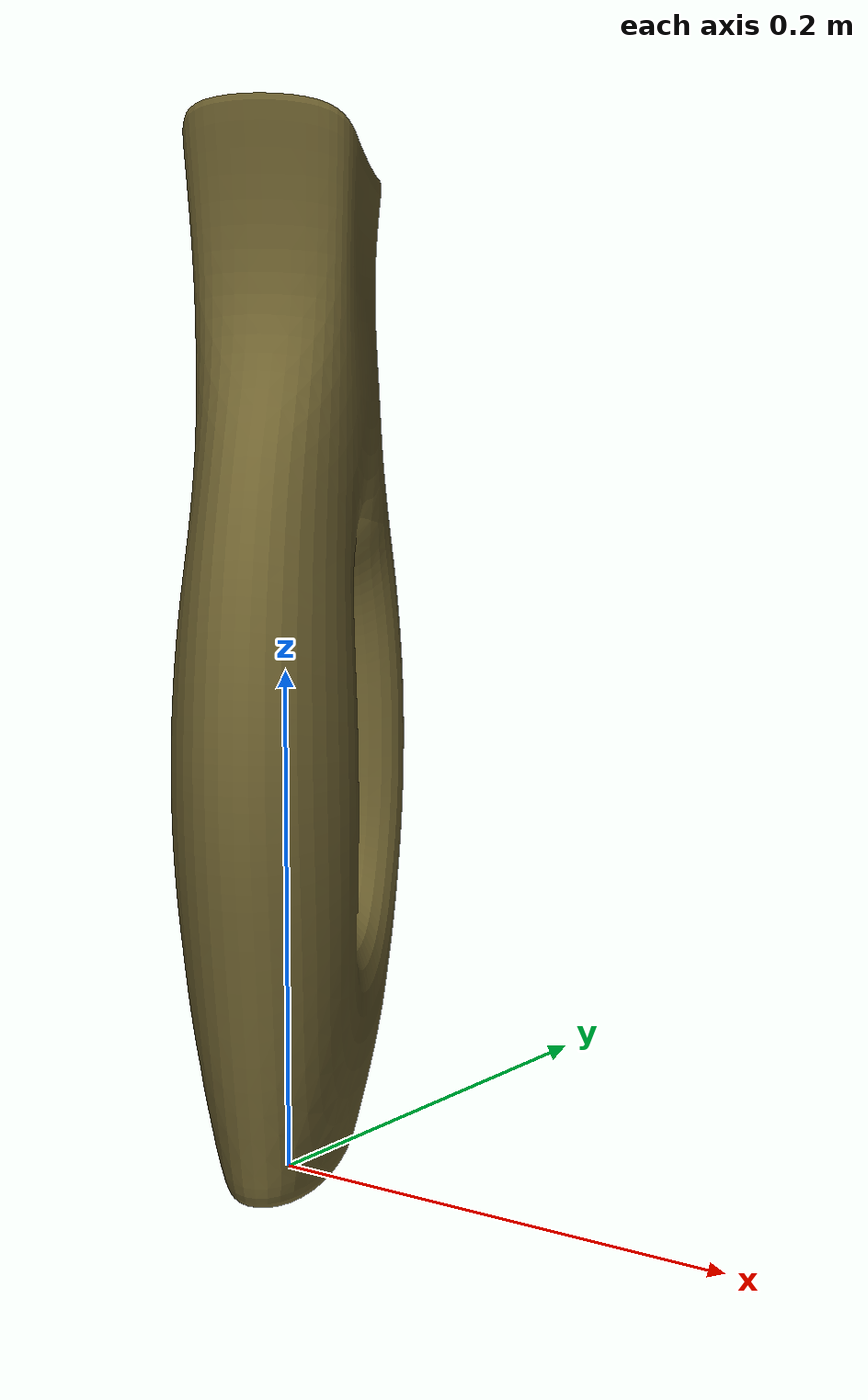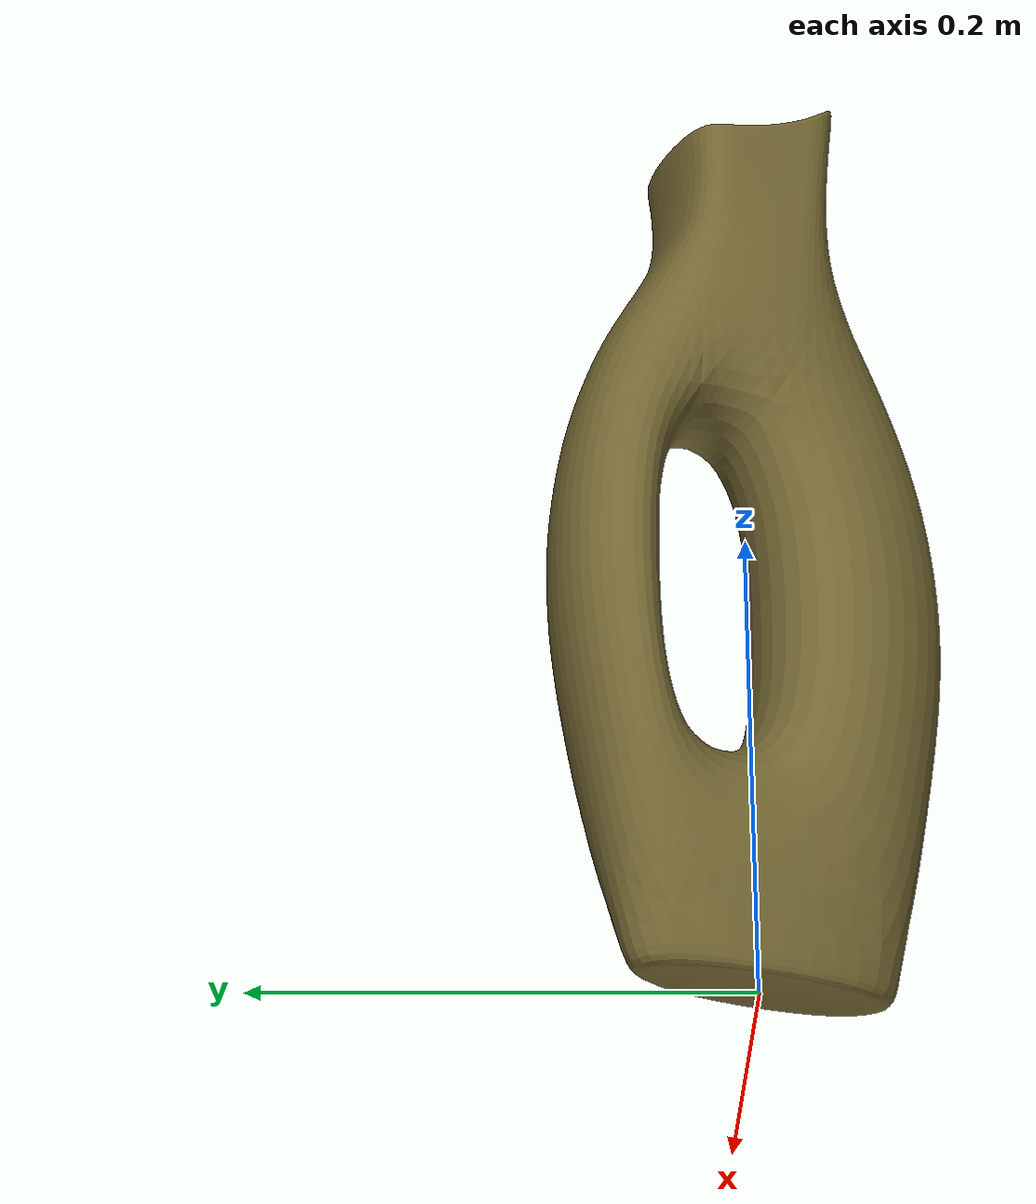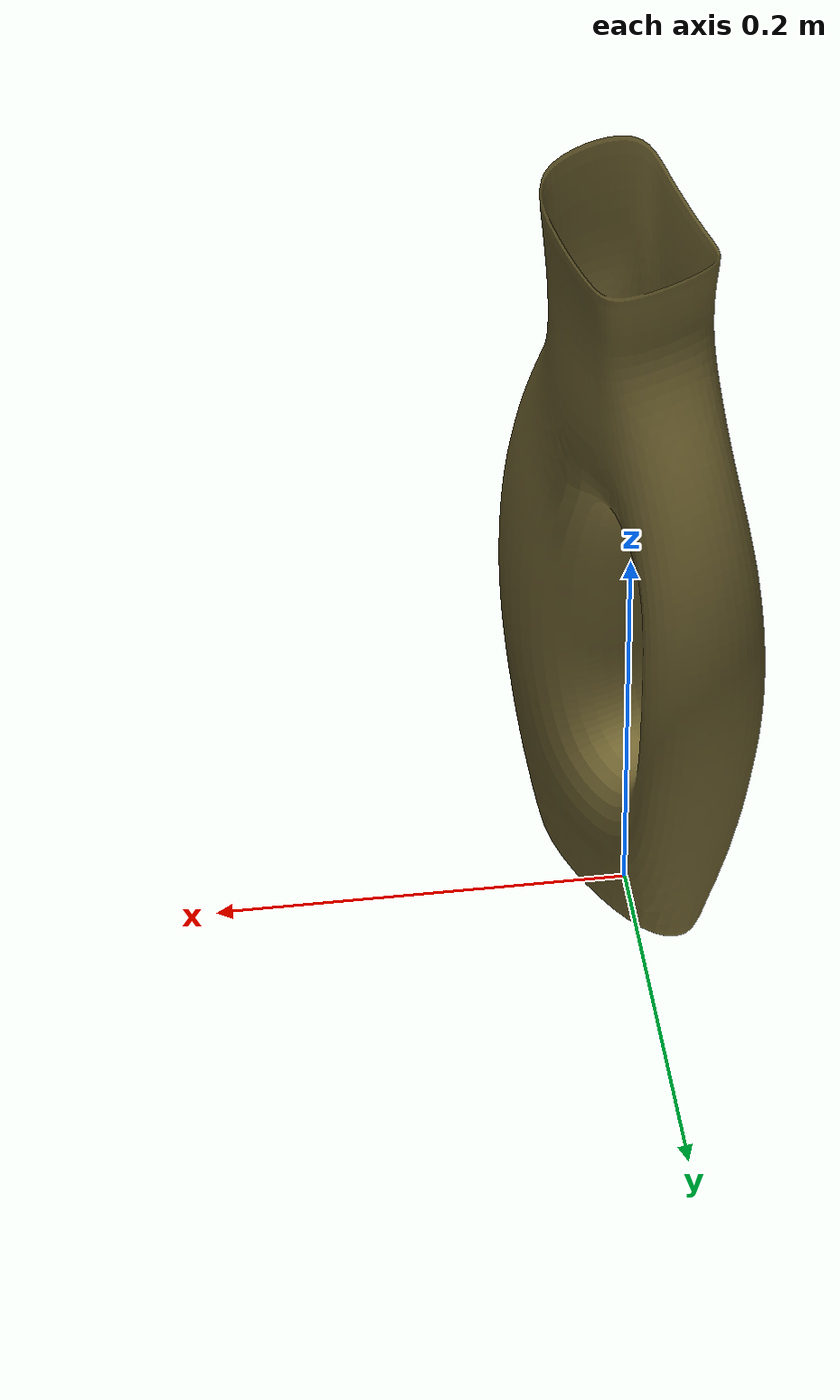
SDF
<?xml version="1.0" ?>
<sdf version="1.5">
  <model name="Vase">
    <static>false</static>
    <link name="link">
      <collision name="collision">
        <geometry>
          <mesh>
            <scale>0.25 0.25 0.25</scale>
            <uri>model://Vase/vase.dae</uri>
          </mesh>
        </geometry>
      </collision>
      <visual name="visual">
        <geometry>
          <mesh>
            <scale>0.25 0.25 0.25</scale>
            <uri>model://Vase/vase.dae</uri>
          </mesh>
        </geometry>
      </visual>
    </link>
  </model>
</sdf>
